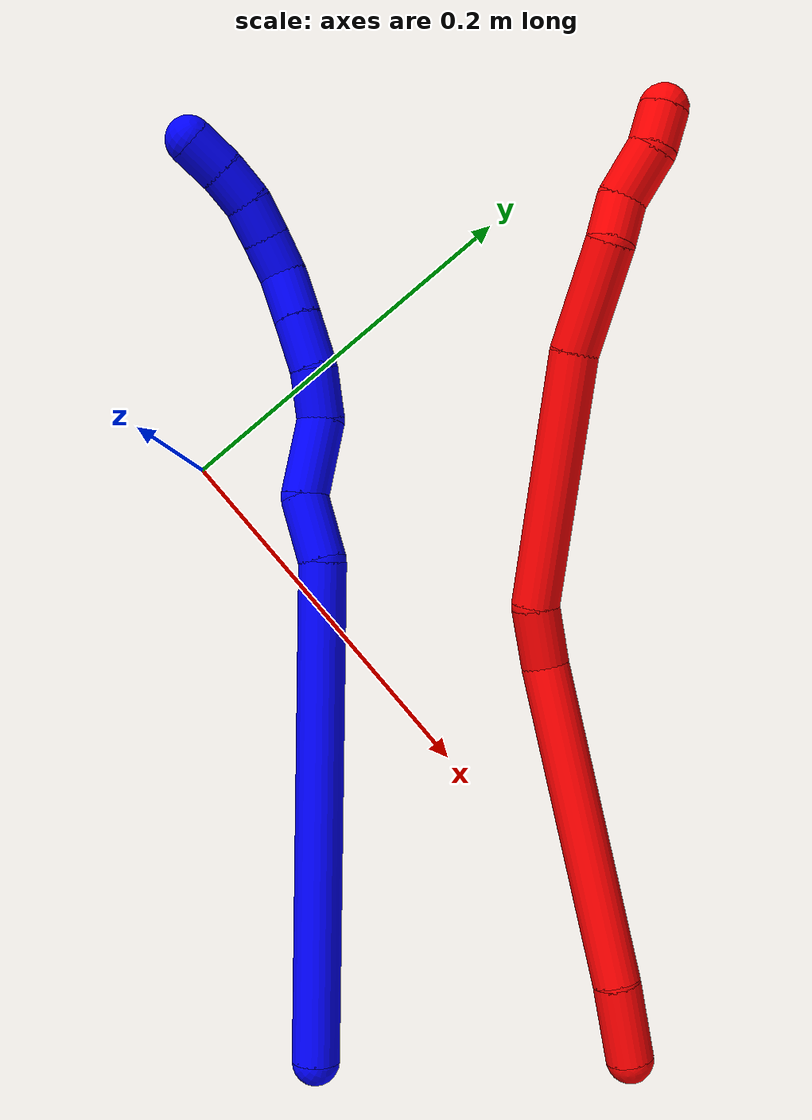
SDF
<sdf version="1.7">
 <world name="default">
  <plugin name="TubeGeneratorPlugin" filename="libtube_generator_plugin.so"/>
  <model name="photoneo_s_sensor">
   <static>1</static>
   <pose>0 0 2 1.57079 1.57079 3.14159</pose>
   <link name="link">
    <inertial><mass>0.1</mass></inertial>
    <sensor name="sensor" type="depth">
     <update_rate>30</update_rate>
     <camera>
      <horizontal_fov>1.22</horizontal_fov>
      <image><width>1920</width><height>1200</height><format>B8G8R8</format></image>
      <clip><near>0.1</near><far>4</far></clip>
      <depth_camera><output>points</output></depth_camera>
     </camera>
     <plugin name="camera_plugin" filename="libgazebo_ros_depth_camera.so">
      <baseline>0.2</baseline>
      <alwaysOn>1</alwaysOn>
      <updateRate>0.0</updateRate>
      <cameraName>camera_ir</cameraName>
      <imageTopicName>/camera/color/image_raw</imageTopicName>
      <cameraInfoTopicName>/camera/color/camera_info</cameraInfoTopicName>
      <depthImageTopicName>/camera/depth/image_raw</depthImageTopicName>
      <depthImageCameraInfoTopicName>/camera/depth/camera_info</depthImageCameraInfoTopicName>
      <pointCloudTopicName>/camera/depth/points</pointCloudTopicName>
      <frameName>fr_optical</frameName>
      <pointCloudCutoff>0.1</pointCloudCutoff>
      <pointCloudCutoffMax>2.0</pointCloudCutoffMax>
      <distortionK1>0</distortionK1>
      <distortionK2>0</distortionK2>
      <distortionK3>0</distortionK3>
      <distortionT1>0</distortionT1>
      <distortionT2>0</distortionT2>
      <CxPrime>0</CxPrime>
      <Cx>0</Cx>
      <Cy>0</Cy>
      <focalLength>0</focalLength>
      <hackBaseline>0</hackBaseline>
     </plugin>
    </sensor>
   </link>
  </model>
  <gravity>0 0 -9.8</gravity>
  <magnetic_field>6e-06 2.3e-05 -4.2e-05</magnetic_field>
  <atmosphere type="adiabatic"/>
  <physics name="default_physics" default="0" type="ode">
   <max_step_size>0.003</max_step_size>
   <real_time_factor>1</real_time_factor>
   <real_time_update_rate>1000</real_time_update_rate>
   <max_contacts>10000</max_contacts>
   <ode>
    <solver>
     <type>quick</type>
     <iters>100</iters>
     <sor>1.3</sor>
     <use_dynamic_moi_rescaling>0</use_dynamic_moi_rescaling>
    </solver>
    <constraints>
     <contact_max_correcting_vel>0</contact_max_correcting_vel>
     <contact_surface_layer>0.001</contact_surface_layer>
     <cfm>0</cfm>
     <erp>0.2</erp>
    </constraints>
   </ode>
  </physics>
  <scene><ambient>0.4 0.4 0.4 1</ambient><background>0.7 0.7 0.7 1</background><shadows>0</shadows></scene>
  <audio><device>default</device></audio>
  <spherical_coordinates>
   <surface_model>EARTH_WGS84</surface_model>
   <latitude_deg>0</latitude_deg>
   <longitude_deg>0</longitude_deg>
   <elevation>0</elevation>
   <heading_deg>0</heading_deg>
  </spherical_coordinates>
  <model name="bin">
   <static>1</static>
   <link name="bottom">
    <collision name="collision-bottom">
     <pose>0 0 -0.01 0 -0 0</pose>
     <geometry><box><size>0.8 0.6 0.02</size></box></geometry>
     <surface>
      <friction><ode><mu>100</mu><mu2>100</mu2></ode></friction>
      <contact><collide_bitmask>65535</collide_bitmask></contact>
     </surface>
    </collision>
   </link>
   <link name="west_wall">
    <collision name="collision-west_wall">
     <pose>-0.41 0 0.1 0 -0 0</pose>
     <geometry><box><size>0.02 0.6 0.2</size></box></geometry>
     <surface>
      <friction><ode><mu>100</mu><mu2>100</mu2></ode></friction>
      <contact><collide_bitmask>65535</collide_bitmask></contact>
     </surface>
    </collision>
   </link>
   <link name="east_wall">
    <collision name="collision-east_wall">
     <pose>0.41 0 0.1 0 -0 0</pose>
     <geometry><box><size>0.02 0.6 0.2</size></box></geometry>
     <surface>
      <friction><ode><mu>100</mu><mu2>100</mu2></ode></friction>
      <contact><collide_bitmask>65535</collide_bitmask></contact>
     </surface>
    </collision>
   </link>
   <link name="south_wall">
    <collision name="collision-south_wall">
     <pose>0 -0.31 0.1 0 -0 0</pose>
     <geometry><box><size>0.8 0.02 0.2</size></box></geometry>
     <surface>
      <friction><ode><mu>100</mu><mu2>100</mu2></ode></friction>
      <contact><collide_bitmask>65535</collide_bitmask></contact>
     </surface>
    </collision>
   </link>
   <link name="north_wall">
    <collision name="collision-north_wall">
     <pose>0 0.31 0.1 0 -0 0</pose>
     <geometry><box><size>0.8 0.02 0.2</size></box></geometry>
     <surface>
      <friction><ode><mu>100</mu><mu2>100</mu2></ode></friction>
      <contact><collide_bitmask>65535</collide_bitmask></contact>
     </surface>
    </collision>
   </link>
  </model>
  <model name="1">
   <static>0</static>
   <link name="1">
    <collision name="collision-cylinder-e_1_1_4">
     <pose>-0.087668 0.071798 0.06497 -0.835281 -0.735775 0.338792</pose>
     <geometry><cylinder><radius>0.0125</radius><length>0.261241</length></cylinder></geometry>
     <surface>
      <friction><ode><mu>1.16</mu><mu2>1.16</mu2><slip1>0</slip1><slip2>0</slip2></ode></friction>
      <contact><ode><kp>1e+06</kp><kd>1</kd><max_vel>0</max_vel><min_depth>0.001</min_depth></ode></contact>
     </surface>
    </collision>
    <visual name="visual-cylinder-e_1_1_4">
     <pose>-0.087668 0.071798 0.06497 -0.835281 -0.735775 0.338792</pose>
     <geometry><cylinder><radius>0.0125</radius><length>0.261241</length></cylinder></geometry>
     <material><ambient>0 0 1 1</ambient></material>
    </visual>
    <collision name="collision-cylinder-e_2_4_5">
     <pose>-0.190351 0.151899 0.133955 -1.12042 -1.02003 0.674891</pose>
     <geometry><cylinder><radius>0.0125</radius><length>0.035244</length></cylinder></geometry>
     <surface>
      <friction><ode><mu>1.16</mu><mu2>1.16</mu2><slip1>0</slip1><slip2>0</slip2></ode></friction>
      <contact><ode><kp>1e+06</kp><kd>1</kd><max_vel>0</max_vel><min_depth>0.001</min_depth></ode></contact>
     </surface>
    </collision>
    <visual name="visual-cylinder-e_2_4_5">
     <pose>-0.190351 0.151899 0.133955 -1.12042 -1.02003 0.674891</pose>
     <geometry><cylinder><radius>0.0125</radius><length>0.035244</length></cylinder></geometry>
     <material><ambient>0 0 1 1</ambient></material>
    </visual>
    <collision name="collision-cylinder-e_3_5_6">
     <pose>-0.216214 0.175103 0.14753 -1.00035 -0.549696 0.305819</pose>
     <geometry><cylinder><radius>0.0125</radius><length>0.041525</length></cylinder></geometry>
     <surface>
      <friction><ode><mu>1.16</mu><mu2>1.16</mu2><slip1>0</slip1><slip2>0</slip2></ode></friction>
      <contact><ode><kp>1e+06</kp><kd>1</kd><max_vel>0</max_vel><min_depth>0.001</min_depth></ode></contact>
     </surface>
    </collision>
    <visual name="visual-cylinder-e_3_5_6">
     <pose>-0.216214 0.175103 0.14753 -1.00035 -0.549696 0.305819</pose>
     <geometry><cylinder><radius>0.0125</radius><length>0.041525</length></cylinder></geometry>
     <material><ambient>0 0 1 1</ambient></material>
    </visual>
    <collision name="collision-cylinder-e_4_6_7">
     <pose>-0.237278 0.195727 0.163325 -0.742649 -0.879009 0.36215</pose>
     <geometry><cylinder><radius>0.0125</radius><length>0.026534</length></cylinder></geometry>
     <surface>
      <friction><ode><mu>1.16</mu><mu2>1.16</mu2><slip1>0</slip1><slip2>0</slip2></ode></friction>
      <contact><ode><kp>1e+06</kp><kd>1</kd><max_vel>0</max_vel><min_depth>0.001</min_depth></ode></contact>
     </surface>
    </collision>
    <visual name="visual-cylinder-e_4_6_7">
     <pose>-0.237278 0.195727 0.163325 -0.742649 -0.879009 0.36215</pose>
     <geometry><cylinder><radius>0.0125</radius><length>0.026534</length></cylinder></geometry>
     <material><ambient>0 0 1 1</ambient></material>
    </visual>
    <collision name="collision-cylinder-e_5_7_8">
     <pose>-0.25978 0.207214 0.173397 -0.983402 -1.05754 0.606532</pose>
     <geometry><cylinder><radius>0.0125</radius><length>0.028204</length></cylinder></geometry>
     <surface>
      <friction><ode><mu>1.16</mu><mu2>1.16</mu2><slip1>0</slip1><slip2>0</slip2></ode></friction>
      <contact><ode><kp>1e+06</kp><kd>1</kd><max_vel>0</max_vel><min_depth>0.001</min_depth></ode></contact>
     </surface>
    </collision>
    <visual name="visual-cylinder-e_5_7_8">
     <pose>-0.25978 0.207214 0.173397 -0.983402 -1.05754 0.606532</pose>
     <geometry><cylinder><radius>0.0125</radius><length>0.028204</length></cylinder></geometry>
     <material><ambient>0 0 1 1</ambient></material>
    </visual>
    <collision name="collision-cylinder-e_6_8_9">
     <pose>-0.282826 0.217946 0.180316 -1.01564 -1.07308 0.639243</pose>
     <geometry><cylinder><radius>0.0125</radius><length>0.024493</length></cylinder></geometry>
     <surface>
      <friction><ode><mu>1.16</mu><mu2>1.16</mu2><slip1>0</slip1><slip2>0</slip2></ode></friction>
      <contact><ode><kp>1e+06</kp><kd>1</kd><max_vel>0</max_vel><min_depth>0.001</min_depth></ode></contact>
     </surface>
    </collision>
    <visual name="visual-cylinder-e_6_8_9">
     <pose>-0.282826 0.217946 0.180316 -1.01564 -1.07308 0.639243</pose>
     <geometry><cylinder><radius>0.0125</radius><length>0.024493</length></cylinder></geometry>
     <material><ambient>0 0 1 1</ambient></material>
    </visual>
    <collision name="collision-cylinder-e_7_9_10">
     <pose>-0.302735 0.224268 0.187403 -0.32589 -1.13791 0.2095</pose>
     <geometry><cylinder><radius>0.0125</radius><length>0.020157</length></cylinder></geometry>
     <surface>
      <friction><ode><mu>1.16</mu><mu2>1.16</mu2><slip1>0</slip1><slip2>0</slip2></ode></friction>
      <contact><ode><kp>1e+06</kp><kd>1</kd><max_vel>0</max_vel><min_depth>0.001</min_depth></ode></contact>
     </surface>
    </collision>
    <visual name="visual-cylinder-e_7_9_10">
     <pose>-0.302735 0.224268 0.187403 -0.32589 -1.13791 0.2095</pose>
     <geometry><cylinder><radius>0.0125</radius><length>0.020157</length></cylinder></geometry>
     <material><ambient>0 0 1 1</ambient></material>
    </visual>
    <collision name="collision-cylinder-e_8_10_11">
     <pose>-0.321082 0.226277 0.195816 -0.147603 -1.11963 0.092604</pose>
     <geometry><cylinder><radius>0.0125</radius><length>0.020441</length></cylinder></geometry>
     <surface>
      <friction><ode><mu>1.16</mu><mu2>1.16</mu2><slip1>0</slip1><slip2>0</slip2></ode></friction>
      <contact><ode><kp>1e+06</kp><kd>1</kd><max_vel>0</max_vel><min_depth>0.001</min_depth></ode></contact>
     </surface>
    </collision>
    <visual name="visual-cylinder-e_8_10_11">
     <pose>-0.321082 0.226277 0.195816 -0.147603 -1.11963 0.092604</pose>
     <geometry><cylinder><radius>0.0125</radius><length>0.020441</length></cylinder></geometry>
     <material><ambient>0 0 1 1</ambient></material>
    </visual>
    <collision name="collision-cylinder-e_9_11_12">
     <pose>-0.339849 0.225505 0.20354 0.406399 -1.21003 -0.283062</pose>
     <geometry><cylinder><radius>0.0125</radius><length>0.020455</length></cylinder></geometry>
     <surface>
      <friction><ode><mu>1.16</mu><mu2>1.16</mu2><slip1>0</slip1><slip2>0</slip2></ode></friction>
      <contact><ode><kp>1e+06</kp><kd>1</kd><max_vel>0</max_vel><min_depth>0.001</min_depth></ode></contact>
     </surface>
    </collision>
    <visual name="visual-cylinder-e_9_11_12">
     <pose>-0.339849 0.225505 0.20354 0.406399 -1.21003 -0.283062</pose>
     <geometry><cylinder><radius>0.0125</radius><length>0.020455</length></cylinder></geometry>
     <material><ambient>0 0 1 1</ambient></material>
    </visual>
    <collision name="collision-cylinder-e_10_12_2">
     <pose>-0.35952 0.221306 0.209693 0.773712 -1.19668 -0.541779</pose>
     <geometry><cylinder><radius>0.0125</radius><length>0.021706</length></cylinder></geometry>
     <surface>
      <friction><ode><mu>1.16</mu><mu2>1.16</mu2><slip1>0</slip1><slip2>0</slip2></ode></friction>
      <contact><ode><kp>1e+06</kp><kd>1</kd><max_vel>0</max_vel><min_depth>0.001</min_depth></ode></contact>
     </surface>
    </collision>
    <visual name="visual-cylinder-e_10_12_2">
     <pose>-0.35952 0.221306 0.209693 0.773712 -1.19668 -0.541779</pose>
     <geometry><cylinder><radius>0.0125</radius><length>0.021706</length></cylinder></geometry>
     <material><ambient>0 0 1 1</ambient></material>
    </visual>
    <collision name="collision-sphere-2">
     <pose>-0.369622 0.218535 0.212531 0 -0 0</pose>
     <geometry><sphere><radius>0.0125</radius></sphere></geometry>
     <surface>
      <friction><ode><mu>1.16</mu><mu2>1.16</mu2><slip1>0</slip1><slip2>0</slip2></ode></friction>
      <contact><ode><kp>1e+06</kp><kd>1</kd><max_vel>0</max_vel><min_depth>0.001</min_depth></ode></contact>
     </surface>
    </collision>
    <visual name="visual-sphere-2">
     <pose>-0.369622 0.218535 0.212531 0 -0 0</pose>
     <geometry><sphere><radius>0.0125</radius></sphere></geometry>
     <material><ambient>0 0 1 1</ambient></material>
    </visual>
    <collision name="collision-sphere-12">
     <pose>-0.349418 0.224078 0.206856 0 -0 0</pose>
     <geometry><sphere><radius>0.0125</radius></sphere></geometry>
     <surface>
      <friction><ode><mu>1.16</mu><mu2>1.16</mu2><slip1>0</slip1><slip2>0</slip2></ode></friction>
      <contact><ode><kp>1e+06</kp><kd>1</kd><max_vel>0</max_vel><min_depth>0.001</min_depth></ode></contact>
     </surface>
    </collision>
    <visual name="visual-sphere-12">
     <pose>-0.349418 0.224078 0.206856 0 -0 0</pose>
     <geometry><sphere><radius>0.0125</radius></sphere></geometry>
     <material><ambient>0 0 1 1</ambient></material>
    </visual>
    <collision name="collision-sphere-11">
     <pose>-0.330279 0.226932 0.200224 0 -0 0</pose>
     <geometry><sphere><radius>0.0125</radius></sphere></geometry>
     <surface>
      <friction><ode><mu>1.16</mu><mu2>1.16</mu2><slip1>0</slip1><slip2>0</slip2></ode></friction>
      <contact><ode><kp>1e+06</kp><kd>1</kd><max_vel>0</max_vel><min_depth>0.001</min_depth></ode></contact>
     </surface>
    </collision>
    <visual name="visual-sphere-11">
     <pose>-0.330279 0.226932 0.200224 0 -0 0</pose>
     <geometry><sphere><radius>0.0125</radius></sphere></geometry>
     <material><ambient>0 0 1 1</ambient></material>
    </visual>
    <collision name="collision-sphere-10">
     <pose>-0.311884 0.225622 0.191408 0 -0 0</pose>
     <geometry><sphere><radius>0.0125</radius></sphere></geometry>
     <surface>
      <friction><ode><mu>1.16</mu><mu2>1.16</mu2><slip1>0</slip1><slip2>0</slip2></ode></friction>
      <contact><ode><kp>1e+06</kp><kd>1</kd><max_vel>0</max_vel><min_depth>0.001</min_depth></ode></contact>
     </surface>
    </collision>
    <visual name="visual-sphere-10">
     <pose>-0.311884 0.225622 0.191408 0 -0 0</pose>
     <geometry><sphere><radius>0.0125</radius></sphere></geometry>
     <material><ambient>0 0 1 1</ambient></material>
    </visual>
    <collision name="collision-sphere-9">
     <pose>-0.293586 0.222914 0.183398 0 -0 0</pose>
     <geometry><sphere><radius>0.0125</radius></sphere></geometry>
     <surface>
      <friction><ode><mu>1.16</mu><mu2>1.16</mu2><slip1>0</slip1><slip2>0</slip2></ode></friction>
      <contact><ode><kp>1e+06</kp><kd>1</kd><max_vel>0</max_vel><min_depth>0.001</min_depth></ode></contact>
     </surface>
    </collision>
    <visual name="visual-sphere-9">
     <pose>-0.293586 0.222914 0.183398 0 -0 0</pose>
     <geometry><sphere><radius>0.0125</radius></sphere></geometry>
     <material><ambient>0 0 1 1</ambient></material>
    </visual>
    <collision name="collision-sphere-4">
     <pose>-0.175335 0.143597 0.129941 0 -0 0</pose>
     <geometry><sphere><radius>0.0125</radius></sphere></geometry>
     <surface>
      <friction><ode><mu>1.16</mu><mu2>1.16</mu2><slip1>0</slip1><slip2>0</slip2></ode></friction>
      <contact><ode><kp>1e+06</kp><kd>1</kd><max_vel>0</max_vel><min_depth>0.001</min_depth></ode></contact>
     </surface>
    </collision>
    <visual name="visual-sphere-4">
     <pose>-0.175335 0.143597 0.129941 0 -0 0</pose>
     <geometry><sphere><radius>0.0125</radius></sphere></geometry>
     <material><ambient>0 0 1 1</ambient></material>
    </visual>
    <collision name="collision-sphere-1">
     <geometry><sphere><radius>0.0125</radius></sphere></geometry>
     <surface>
      <friction><ode><mu>1.16</mu><mu2>1.16</mu2><slip1>0</slip1><slip2>0</slip2></ode></friction>
      <contact><ode><kp>1e+06</kp><kd>1</kd><max_vel>0</max_vel><min_depth>0.001</min_depth></ode></contact>
     </surface>
    </collision>
    <visual name="visual-sphere-1">
     <geometry><sphere><radius>0.0125</radius></sphere></geometry>
     <material><ambient>0 0 1 1</ambient></material>
    </visual>
    <collision name="collision-sphere-8">
     <pose>-0.272065 0.212977 0.177234 0 -0 0</pose>
     <geometry><sphere><radius>0.0125</radius></sphere></geometry>
     <surface>
      <friction><ode><mu>1.16</mu><mu2>1.16</mu2><slip1>0</slip1><slip2>0</slip2></ode></friction>
      <contact><ode><kp>1e+06</kp><kd>1</kd><max_vel>0</max_vel><min_depth>0.001</min_depth></ode></contact>
     </surface>
    </collision>
    <visual name="visual-sphere-8">
     <pose>-0.272065 0.212977 0.177234 0 -0 0</pose>
     <geometry><sphere><radius>0.0125</radius></sphere></geometry>
     <material><ambient>0 0 1 1</ambient></material>
    </visual>
    <collision name="collision-sphere-5">
     <pose>-0.205367 0.160202 0.13797 0 -0 0</pose>
     <geometry><sphere><radius>0.0125</radius></sphere></geometry>
     <surface>
      <friction><ode><mu>1.16</mu><mu2>1.16</mu2><slip1>0</slip1><slip2>0</slip2></ode></friction>
      <contact><ode><kp>1e+06</kp><kd>1</kd><max_vel>0</max_vel><min_depth>0.001</min_depth></ode></contact>
     </surface>
    </collision>
    <visual name="visual-sphere-5">
     <pose>-0.205367 0.160202 0.13797 0 -0 0</pose>
     <geometry><sphere><radius>0.0125</radius></sphere></geometry>
     <material><ambient>0 0 1 1</ambient></material>
    </visual>
    <collision name="collision-sphere-6">
     <pose>-0.227061 0.190003 0.15709 0 -0 0</pose>
     <geometry><sphere><radius>0.0125</radius></sphere></geometry>
     <surface>
      <friction><ode><mu>1.16</mu><mu2>1.16</mu2><slip1>0</slip1><slip2>0</slip2></ode></friction>
      <contact><ode><kp>1e+06</kp><kd>1</kd><max_vel>0</max_vel><min_depth>0.001</min_depth></ode></contact>
     </surface>
    </collision>
    <visual name="visual-sphere-6">
     <pose>-0.227061 0.190003 0.15709 0 -0 0</pose>
     <geometry><sphere><radius>0.0125</radius></sphere></geometry>
     <material><ambient>0 0 1 1</ambient></material>
    </visual>
    <collision name="collision-sphere-7">
     <pose>-0.247495 0.20145 0.16956 0 -0 0</pose>
     <geometry><sphere><radius>0.0125</radius></sphere></geometry>
     <surface>
      <friction><ode><mu>1.16</mu><mu2>1.16</mu2><slip1>0</slip1><slip2>0</slip2></ode></friction>
      <contact><ode><kp>1e+06</kp><kd>1</kd><max_vel>0</max_vel><min_depth>0.001</min_depth></ode></contact>
     </surface>
    </collision>
    <visual name="visual-sphere-7">
     <pose>-0.247495 0.20145 0.16956 0 -0 0</pose>
     <geometry><sphere><radius>0.0125</radius></sphere></geometry>
     <material><ambient>0 0 1 1</ambient></material>
    </visual>
    <inertial>
     <pose>-0.17312 0.132639 0.115912 0 -0 0</pose>
     <mass>0.5</mass>
     <inertia>
      <ixx>0.001405</ixx>
      <ixy>0</ixy>
      <ixz>0</ixz>
      <iyy>0.001607</iyy>
      <iyz>0</iyz>
      <izz>0.000208</izz>
     </inertia>
    </inertial>
   </link>
   <pose>0.275257 -0.154805 0.011901 -0.676655 -0.012984 0.113106</pose>
  </model>
  <model name="2">
   <static>0</static>
   <link name="2">
    <collision name="collision-cylinder-e_1_1_4">
     <pose>-0.010783 0.016491 0.007023 -1.16816 -0.541583 0.362973</pose>
     <geometry><cylinder><radius>0.0125</radius><length>0.041835</length></cylinder></geometry>
     <surface>
      <friction><ode><mu>1.16</mu><mu2>1.16</mu2><slip1>0</slip1><slip2>0</slip2></ode></friction>
      <contact><ode><kp>1e+06</kp><kd>1</kd><max_vel>0</max_vel><min_depth>0.001</min_depth></ode></contact>
     </surface>
    </collision>
    <visual name="visual-cylinder-e_1_1_4">
     <pose>-0.010783 0.016491 0.007023 -1.16816 -0.541583 0.362973</pose>
     <geometry><cylinder><radius>0.0125</radius><length>0.041835</length></cylinder></geometry>
     <material><ambient>1 0 0 1</ambient></material>
    </visual>
    <collision name="collision-cylinder-e_2_4_5">
     <pose>-0.057486 0.099737 0.051679 -1.05747 -0.438329 0.258806</pose>
     <geometry><cylinder><radius>0.0125</radius><length>0.169267</length></cylinder></geometry>
     <surface>
      <friction><ode><mu>1.16</mu><mu2>1.16</mu2><slip1>0</slip1><slip2>0</slip2></ode></friction>
      <contact><ode><kp>1e+06</kp><kd>1</kd><max_vel>0</max_vel><min_depth>0.001</min_depth></ode></contact>
     </surface>
    </collision>
    <visual name="visual-cylinder-e_2_4_5">
     <pose>-0.057486 0.099737 0.051679 -1.05747 -0.438329 0.258806</pose>
     <geometry><cylinder><radius>0.0125</radius><length>0.169267</length></cylinder></geometry>
     <material><ambient>1 0 0 1</ambient></material>
    </visual>
    <collision name="collision-cylinder-e_3_5_6">
     <pose>-0.102539 0.17939 0.092767 -1.30906 -0.599842 0.466</pose>
     <geometry><cylinder><radius>0.0125</radius><length>0.032352</length></cylinder></geometry>
     <surface>
      <friction><ode><mu>1.16</mu><mu2>1.16</mu2><slip1>0</slip1><slip2>0</slip2></ode></friction>
      <contact><ode><kp>1e+06</kp><kd>1</kd><max_vel>0</max_vel><min_depth>0.001</min_depth></ode></contact>
     </surface>
    </collision>
    <visual name="visual-cylinder-e_3_5_6">
     <pose>-0.102539 0.17939 0.092767 -1.30906 -0.599842 0.466</pose>
     <geometry><cylinder><radius>0.0125</radius><length>0.032352</length></cylinder></geometry>
     <material><ambient>1 0 0 1</ambient></material>
    </visual>
    <collision name="collision-cylinder-e_4_6_7">
     <pose>-0.160699 0.229508 0.117916 -1.04308 -0.849886 0.508772</pose>
     <geometry><cylinder><radius>0.0125</radius><length>0.130535</length></cylinder></geometry>
     <surface>
      <friction><ode><mu>1.16</mu><mu2>1.16</mu2><slip1>0</slip1><slip2>0</slip2></ode></friction>
      <contact><ode><kp>1e+06</kp><kd>1</kd><max_vel>0</max_vel><min_depth>0.001</min_depth></ode></contact>
     </surface>
    </collision>
    <visual name="visual-cylinder-e_4_6_7">
     <pose>-0.160699 0.229508 0.117916 -1.04308 -0.849886 0.508772</pose>
     <geometry><cylinder><radius>0.0125</radius><length>0.130535</length></cylinder></geometry>
     <material><ambient>1 0 0 1</ambient></material>
    </visual>
    <collision name="collision-cylinder-e_5_7_8">
     <pose>-0.233835 0.279036 0.14686 -1.03845 -1.03587 0.629676</pose>
     <geometry><cylinder><radius>0.0125</radius><length>0.056042</length></cylinder></geometry>
     <surface>
      <friction><ode><mu>1.16</mu><mu2>1.16</mu2><slip1>0</slip1><slip2>0</slip2></ode></friction>
      <contact><ode><kp>1e+06</kp><kd>1</kd><max_vel>0</max_vel><min_depth>0.001</min_depth></ode></contact>
     </surface>
    </collision>
    <visual name="visual-cylinder-e_5_7_8">
     <pose>-0.233835 0.279036 0.14686 -1.03845 -1.03587 0.629676</pose>
     <geometry><cylinder><radius>0.0125</radius><length>0.056042</length></cylinder></geometry>
     <material><ambient>1 0 0 1</ambient></material>
    </visual>
    <collision name="collision-cylinder-e_6_8_9">
     <pose>-0.265848 0.296121 0.159987 -0.682529 -0.806891 0.300916</pose>
     <geometry><cylinder><radius>0.0125</radius><length>0.021898</length></cylinder></geometry>
     <surface>
      <friction><ode><mu>1.16</mu><mu2>1.16</mu2><slip1>0</slip1><slip2>0</slip2></ode></friction>
      <contact><ode><kp>1e+06</kp><kd>1</kd><max_vel>0</max_vel><min_depth>0.001</min_depth></ode></contact>
     </surface>
    </collision>
    <visual name="visual-cylinder-e_6_8_9">
     <pose>-0.265848 0.296121 0.159987 -0.682529 -0.806891 0.300916</pose>
     <geometry><cylinder><radius>0.0125</radius><length>0.021898</length></cylinder></geometry>
     <material><ambient>1 0 0 1</ambient></material>
    </visual>
    <collision name="collision-cylinder-e_7_9_10">
     <pose>-0.286436 0.303809 0.17046 -0.564552 -1.16554 0.377768</pose>
     <geometry><cylinder><radius>0.0125</radius><length>0.027597</length></cylinder></geometry>
     <surface>
      <friction><ode><mu>1.16</mu><mu2>1.16</mu2><slip1>0</slip1><slip2>0</slip2></ode></friction>
      <contact><ode><kp>1e+06</kp><kd>1</kd><max_vel>0</max_vel><min_depth>0.001</min_depth></ode></contact>
     </surface>
    </collision>
    <visual name="visual-cylinder-e_7_9_10">
     <pose>-0.286436 0.303809 0.17046 -0.564552 -1.16554 0.377768</pose>
     <geometry><cylinder><radius>0.0125</radius><length>0.027597</length></cylinder></geometry>
     <material><ambient>1 0 0 1</ambient></material>
    </visual>
    <collision name="collision-cylinder-e_8_10_2">
     <pose>-0.306708 0.310974 0.180448 -0.668056 -0.835432 0.305648</pose>
     <geometry><cylinder><radius>0.0125</radius><length>0.020475</length></cylinder></geometry>
     <surface>
      <friction><ode><mu>1.16</mu><mu2>1.16</mu2><slip1>0</slip1><slip2>0</slip2></ode></friction>
      <contact><ode><kp>1e+06</kp><kd>1</kd><max_vel>0</max_vel><min_depth>0.001</min_depth></ode></contact>
     </surface>
    </collision>
    <visual name="visual-cylinder-e_8_10_2">
     <pose>-0.306708 0.310974 0.180448 -0.668056 -0.835432 0.305648</pose>
     <geometry><cylinder><radius>0.0125</radius><length>0.020475</length></cylinder></geometry>
     <material><ambient>1 0 0 1</ambient></material>
    </visual>
    <collision name="collision-sphere-2">
     <pose>-0.3143 0.315228 0.185839 0 -0 0</pose>
     <geometry><sphere><radius>0.0125</radius></sphere></geometry>
     <surface>
      <friction><ode><mu>1.16</mu><mu2>1.16</mu2><slip1>0</slip1><slip2>0</slip2></ode></friction>
      <contact><ode><kp>1e+06</kp><kd>1</kd><max_vel>0</max_vel><min_depth>0.001</min_depth></ode></contact>
     </surface>
    </collision>
    <visual name="visual-sphere-2">
     <pose>-0.3143 0.315228 0.185839 0 -0 0</pose>
     <geometry><sphere><radius>0.0125</radius></sphere></geometry>
     <material><ambient>1 0 0 1</ambient></material>
    </visual>
    <collision name="collision-sphere-10">
     <pose>-0.299117 0.30672 0.175056 0 -0 0</pose>
     <geometry><sphere><radius>0.0125</radius></sphere></geometry>
     <surface>
      <friction><ode><mu>1.16</mu><mu2>1.16</mu2><slip1>0</slip1><slip2>0</slip2></ode></friction>
      <contact><ode><kp>1e+06</kp><kd>1</kd><max_vel>0</max_vel><min_depth>0.001</min_depth></ode></contact>
     </surface>
    </collision>
    <visual name="visual-sphere-10">
     <pose>-0.299117 0.30672 0.175056 0 -0 0</pose>
     <geometry><sphere><radius>0.0125</radius></sphere></geometry>
     <material><ambient>1 0 0 1</ambient></material>
    </visual>
    <collision name="collision-sphere-9">
     <pose>-0.273755 0.300898 0.165864 0 -0 0</pose>
     <geometry><sphere><radius>0.0125</radius></sphere></geometry>
     <surface>
      <friction><ode><mu>1.16</mu><mu2>1.16</mu2><slip1>0</slip1><slip2>0</slip2></ode></friction>
      <contact><ode><kp>1e+06</kp><kd>1</kd><max_vel>0</max_vel><min_depth>0.001</min_depth></ode></contact>
     </surface>
    </collision>
    <visual name="visual-sphere-9">
     <pose>-0.273755 0.300898 0.165864 0 -0 0</pose>
     <geometry><sphere><radius>0.0125</radius></sphere></geometry>
     <material><ambient>1 0 0 1</ambient></material>
    </visual>
    <collision name="collision-sphere-4">
     <pose>-0.021566 0.032982 0.014047 0 -0 0</pose>
     <geometry><sphere><radius>0.0125</radius></sphere></geometry>
     <surface>
      <friction><ode><mu>1.16</mu><mu2>1.16</mu2><slip1>0</slip1><slip2>0</slip2></ode></friction>
      <contact><ode><kp>1e+06</kp><kd>1</kd><max_vel>0</max_vel><min_depth>0.001</min_depth></ode></contact>
     </surface>
    </collision>
    <visual name="visual-sphere-4">
     <pose>-0.021566 0.032982 0.014047 0 -0 0</pose>
     <geometry><sphere><radius>0.0125</radius></sphere></geometry>
     <material><ambient>1 0 0 1</ambient></material>
    </visual>
    <collision name="collision-sphere-1">
     <geometry><sphere><radius>0.0125</radius></sphere></geometry>
     <surface>
      <friction><ode><mu>1.16</mu><mu2>1.16</mu2><slip1>0</slip1><slip2>0</slip2></ode></friction>
      <contact><ode><kp>1e+06</kp><kd>1</kd><max_vel>0</max_vel><min_depth>0.001</min_depth></ode></contact>
     </surface>
    </collision>
    <visual name="visual-sphere-1">
     <geometry><sphere><radius>0.0125</radius></sphere></geometry>
     <material><ambient>1 0 0 1</ambient></material>
    </visual>
    <collision name="collision-sphere-8">
     <pose>-0.257942 0.291344 0.15411 0 -0 0</pose>
     <geometry><sphere><radius>0.0125</radius></sphere></geometry>
     <surface>
      <friction><ode><mu>1.16</mu><mu2>1.16</mu2><slip1>0</slip1><slip2>0</slip2></ode></friction>
      <contact><ode><kp>1e+06</kp><kd>1</kd><max_vel>0</max_vel><min_depth>0.001</min_depth></ode></contact>
     </surface>
    </collision>
    <visual name="visual-sphere-8">
     <pose>-0.257942 0.291344 0.15411 0 -0 0</pose>
     <geometry><sphere><radius>0.0125</radius></sphere></geometry>
     <material><ambient>1 0 0 1</ambient></material>
    </visual>
    <collision name="collision-sphere-5">
     <pose>-0.093407 0.166493 0.089312 0 -0 0</pose>
     <geometry><sphere><radius>0.0125</radius></sphere></geometry>
     <surface>
      <friction><ode><mu>1.16</mu><mu2>1.16</mu2><slip1>0</slip1><slip2>0</slip2></ode></friction>
      <contact><ode><kp>1e+06</kp><kd>1</kd><max_vel>0</max_vel><min_depth>0.001</min_depth></ode></contact>
     </surface>
    </collision>
    <visual name="visual-sphere-5">
     <pose>-0.093407 0.166493 0.089312 0 -0 0</pose>
     <geometry><sphere><radius>0.0125</radius></sphere></geometry>
     <material><ambient>1 0 0 1</ambient></material>
    </visual>
    <collision name="collision-sphere-6">
     <pose>-0.11167 0.192288 0.096222 0 -0 0</pose>
     <geometry><sphere><radius>0.0125</radius></sphere></geometry>
     <surface>
      <friction><ode><mu>1.16</mu><mu2>1.16</mu2><slip1>0</slip1><slip2>0</slip2></ode></friction>
      <contact><ode><kp>1e+06</kp><kd>1</kd><max_vel>0</max_vel><min_depth>0.001</min_depth></ode></contact>
     </surface>
    </collision>
    <visual name="visual-sphere-6">
     <pose>-0.11167 0.192288 0.096222 0 -0 0</pose>
     <geometry><sphere><radius>0.0125</radius></sphere></geometry>
     <material><ambient>1 0 0 1</ambient></material>
    </visual>
    <collision name="collision-sphere-7">
     <pose>-0.209729 0.266728 0.139609 0 -0 0</pose>
     <geometry><sphere><radius>0.0125</radius></sphere></geometry>
     <surface>
      <friction><ode><mu>1.16</mu><mu2>1.16</mu2><slip1>0</slip1><slip2>0</slip2></ode></friction>
      <contact><ode><kp>1e+06</kp><kd>1</kd><max_vel>0</max_vel><min_depth>0.001</min_depth></ode></contact>
     </surface>
    </collision>
    <visual name="visual-sphere-7">
     <pose>-0.209729 0.266728 0.139609 0 -0 0</pose>
     <geometry><sphere><radius>0.0125</radius></sphere></geometry>
     <material><ambient>1 0 0 1</ambient></material>
    </visual>
    <inertial>
     <pose>-0.135173 0.180416 0.095134 0 -0 0</pose>
     <mass>0.5</mass>
     <inertia>
      <ixx>0.00063</ixx>
      <ixy>0</ixy>
      <ixz>0</ixz>
      <iyy>0.000595</iyy>
      <iyz>0</iyz>
      <izz>-9.4e-05</izz>
     </inertia>
    </inertial>
   </link>
   <pose>0.380709 -0.029097 0.012235 2.91925 0.5034 -1.53645</pose>
  </model>
 </world>
</sdf>
